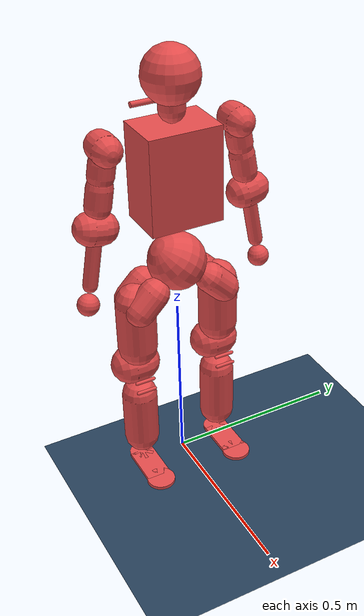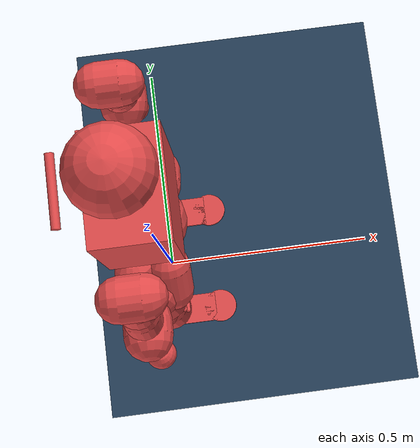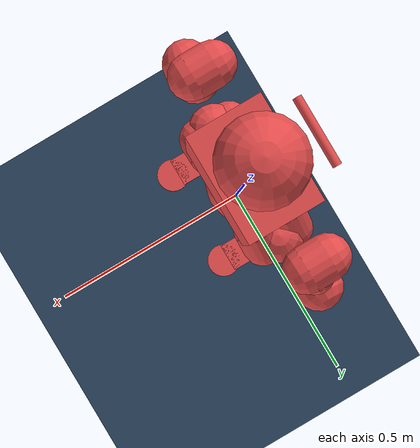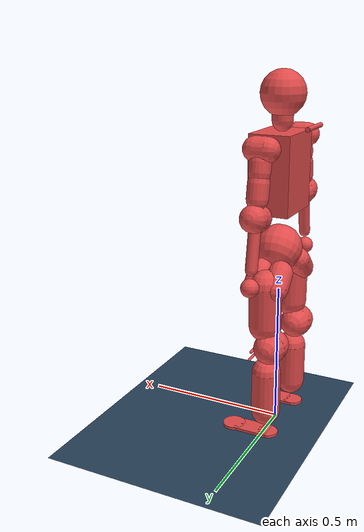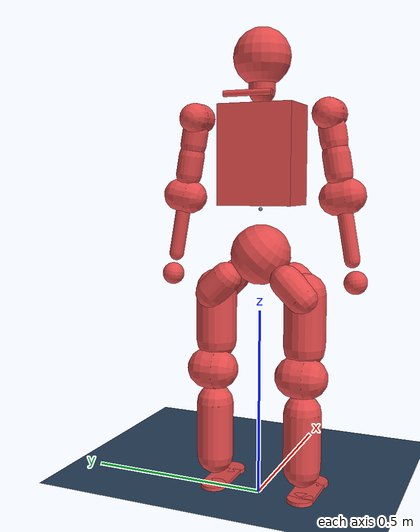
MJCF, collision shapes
<mujoco model="kuavo scene">
  <include file="biped_s17_verified_handball_fixedhead_no_massless.xml"/>

  <statistic center="0 0 1" extent="1.8"/>

  <visual>
    <headlight diffuse="0.6 0.6 0.6" ambient="0.3 0.3 0.3" specular="0 0 0"/>
    <rgba haze="0.15 0.25 0.35 1"/>
    <global azimuth="160" elevation="-20"/>
  </visual>

  <asset>
    <texture type="skybox" builtin="gradient" rgb1="0.3 0.5 0.7" rgb2="0 0 0" width="512" height="3072"/>
    <texture type="2d" name="groundplane" builtin="checker" mark="edge" rgb1="0.2 0.3 0.4" rgb2="0.1 0.2 0.3"
      markrgb="0.8 0.8 0.8" width="300" height="300"/>
    <material name="groundplane" texture="groundplane" texuniform="true" texrepeat="5 5" reflectance="0.2"/>
  </asset>

  <worldbody>
    <light pos="0 0 3.5" dir="0 0 -1" directional="true"/>
    <geom name="floor" size="0 0 0.05" type="plane" material="groundplane" friction="0.4 0.005 0.0001"/>
  </worldbody>

  <keyframe>

    <key name="lie0"
      qpos="
      -0.166485 0.400412 0.079399
      0.507003 -0.53823 0.463297 0.48848
      0.028208 0.068658 0.136149 0.104593 -0.638424 0.128255
      -0.073492 0.026349 -0.090781 0.0 -0.848447 -0.064582
      0.065256
      0.027506 0.056497 -0.407626 -0.2389
      -0.12534 0.015466 0.86924 -0.03061
    "/>

    <key name="home"
      qpos="
    0 0 0.98
    1 0 0 0
    0
    0 0 0 0 0 0
    0 0 0 0 0 0
    0 0 0 0
    0 0 0 0
    "/>
  </keyframe>

</mujoco>

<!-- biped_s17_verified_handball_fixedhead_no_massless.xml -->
<mujoco model="biped_s17">
  <compiler angle="radian" meshdir="../meshes/"/>
  <default>
    <default class="collision">
      <geom material="collision" contype="1" conaffinity="1" user="2" rgba="0.9 0.3 0.3 0.2"/>
    </default>
  </default>
  <asset>
    <material name="collision"/>
    <mesh name="torso" file="torso.STL"/>
    <mesh name="waist" file="waist.STL"/>
    <mesh name="l_leg_pitch" file="l_leg_pitch.STL"/>
    <mesh name="l_leg_roll" file="l_leg_roll.STL"/>
    <mesh name="l_leg_yaw" file="l_leg_yaw.STL"/>
    <mesh name="l_knee" file="l_knee.STL"/>
    <mesh name="l_foot_pitch" file="l_foot_pitch.STL"/>
    <mesh name="l_foot_roll" file="l_foot_roll.STL"/>
    <mesh name="r_leg_pitch" file="r_leg_pitch.STL"/>
    <mesh name="r_leg_roll" file="r_leg_roll.STL"/>
    <mesh name="r_leg_yaw" file="r_leg_yaw.STL"/>
    <mesh name="r_knee" file="r_knee.STL"/>
    <mesh name="r_foot_pitch" file="r_foot_pitch.STL"/>
    <mesh name="r_foot_roll" file="r_foot_roll.STL"/>
    <mesh name="l_arm_pitch" file="l_arm_pitch.STL"/>
    <mesh name="l_arm_roll" file="l_arm_roll.STL"/>
    <mesh name="l_arm_yaw" file="l_arm_yaw.STL"/>
    <mesh name="l_forearm" file="l_forearm.STL"/>
    <mesh name="l_handball" file="l_handball.STL"/>
    <mesh name="r_arm_pitch" file="r_arm_pitch.STL"/>
    <mesh name="r_arm_roll" file="r_arm_roll.STL"/>
    <mesh name="r_arm_yaw" file="r_arm_yaw.STL"/>
    <mesh name="r_forearm" file="r_forearm.STL"/>
    <mesh name="r_handball" file="r_handball.STL"/>
    <mesh name="head_yaw" file="head_yaw.STL"/>
    <mesh name="head_pitch" file="head_pitch.STL"/>
    <mesh name="head_camera_base" file="head_camera_base.STL"/>
    <mesh name="head_radar" file="head_radar.STL"/>
  </asset>
  <worldbody>
    <!-- The IMU-bearing chest is the floating root, matching Roban semantics. -->
    <body name="base_link" pos="0 0 0.77">
      <site name="imu" pos="0 0 0"/>
      <inertial pos="-0.01005136 -0.00110498 0.14058574" mass="8.37744703" fullinertia="0.10436018 0.08324244 0.04927332 0.00037418 0.00220231 -0.00108080"/>
      <joint name="dummy_to_base_link" type="free" limited="false" actuatorfrclimited="false"/>
      <geom type="mesh" contype="0" conaffinity="0" group="1" density="0" rgba="1 1 1 1" mesh="torso"/>
      <geom size="0.07 0.1 0.13" pos="0.01 0 0.14" type="box" class="collision"/>
      <geom size="0.008 0.0625" pos="-0.102 0 0.288" quat="0.707105 0.707108 0 0" type="cylinder" class="collision"/>
      <!-- The pelvis and both legs move below the chest through the waist. -->
      <body name="waist_yaw_link">
        <inertial pos="0.00202324 -0.00003822 -0.12282710" mass="5.27737344" fullinertia="0.02656560 0.01821248 0.02080739 0.00001678 -0.00000028 -0.00000269"/>
        <joint name="waist_yaw_joint" pos="0 0 0" axis="0 0 1" range="-2.61799 2.61799" armature="0.003" damping="0.2" frictionloss="0.0"/>
        <geom type="mesh" contype="0" conaffinity="0" group="1" density="0" rgba="1 1 1 1" mesh="waist"/>
        <geom size="0.08" pos="0.005 0 -0.12" quat="0.923764 0.382961 0 0" class="collision"/>
        <body name="leg_l1_link" pos="0 0.12441 -0.22265">
          <inertial pos="-0.00003227 -0.03334417 0.03367064" mass="0.6865" fullinertia="0.00126377 0.00218060 0.00217034 0.00001414 -0.00001412 0.00004419"/>
          <joint name="leg_l1_joint" pos="0 0 0" axis="0 0.707107 -0.707107" range="-3.228 2.44346" armature="0.003" damping="0.2" frictionloss="0.0"/>
          <geom type="mesh" contype="0" conaffinity="0" group="1" density="0" rgba="1 1 1 1" mesh="l_leg_pitch"/>
          <geom size="0.042 0.03" pos="-0.035 -0.02 0.02" quat="0.923764 0.382961 0 0" type="capsule" class="collision"/>
          <geom size="0.042 0.03" pos="0.035 -0.02 0.02" quat="0.923764 0.382961 0 0" type="capsule" class="collision"/>
          <body name="leg_l2_link">
            <inertial pos="0.00997750 0.00006468 -0.00976037" mass="2.054" fullinertia="0.00431431 0.00400702 0.00326276 0.00000608 -0.00014901 -0.00000584"/>
            <joint name="leg_l2_joint" pos="0 0 0" axis="1 0 0" range="-0.837758 2.40855" armature="0.003" damping="0.2" frictionloss="0.0"/>
            <geom type="mesh" contype="0" conaffinity="0" group="1" density="0" rgba="1 1 1 1" mesh="l_leg_roll"/>
            <geom size="0.055 0.07" pos="0 0 -0.065" type="capsule" class="collision"/>
            <body name="leg_l3_link">
              <inertial pos="-0.01402491 -0.00139317 -0.15993926" mass="3.2746" fullinertia="0.01347200 0.01460281 0.00559251 -0.00009787 -0.00236299 -0.00025458"/>
              <joint name="leg_l3_joint" pos="0 0 0" axis="0 0 1" range="-1.7453 1.7453" armature="0.003" damping="0.2" frictionloss="0.0"/>
              <geom type="mesh" contype="0" conaffinity="0" group="1" density="0" rgba="1 1 1 1" mesh="l_leg_yaw"/>
              <geom size="0.055 0.015" pos="-0.025 0 -0.21" quat="0.707388 0.706825 0 0" type="capsule" class="collision"/>
              <body name="leg_l4_link" pos="-0.03 0 -0.213">
                <inertial pos="0.02266979 0.00479531 -0.11412872" mass="2.4454" fullinertia="0.01333243 0.01330983 0.00318742 0.00025106 0.00029427 -0.00133540"/>
                <joint name="leg_l4_joint" pos="0 0 0" axis="0 1 0" range="-0.0872665 2.53073" armature="0.003" damping="0.2" frictionloss="0.0"/>
                <geom type="mesh" contype="0" conaffinity="0" group="1" density="0" rgba="1 1 1 1" mesh="l_knee"/>
                <geom size="0.05 0.075" pos="0.021 0 -0.17" type="capsule" class="collision"/>
                <geom size="0.005 0.025" pos="0.068 0 -0.02" quat="0.707388 0.706825 0 0" type="capsule" class="collision"/>
                <geom size="0.005 0.025" pos="0.074 0 -0.05" quat="0.707388 0.706825 0 0" type="capsule" class="collision"/>
                <body name="leg_l5_link" pos="0.03 0 -0.276">
                  <inertial pos="-0.00344503 -0.00000752 -0.00936005" mass="0.1314" fullinertia="0.00002019 0.00002431 0.00001384 0.00000000 -0.00000328 0.00000000"/>
                  <joint name="leg_l5_joint" pos="0 0 0" axis="0 1 0" range="-0.872665 0.523599" armature="0.003" damping="0.2" frictionloss="0.0"/>
                  <geom type="mesh" contype="0" conaffinity="0" group="1" density="0" rgba="1 1 1 1" mesh="l_foot_pitch"/>
                  <body name="leg_l6_link" pos="0 0 -0.018">
                    <inertial pos="0.02860311 0.00007463 -0.01983204" mass="0.5783271" fullinertia="0.00028622 0.00147216 0.00158313 -0.00000001 0.00013017 -0.00000093"/>
                    <joint name="leg_l6_joint" pos="0 0 0" axis="1 0 0" range="-0.261799 0.261799" armature="0.003" damping="0.2" frictionloss="0.0"/>
                    <geom type="mesh" contype="0" conaffinity="0" group="1" density="0" rgba="1 1 1 1" mesh="l_foot_roll"/>
                    <geom size="0.035 0.005" pos="-0.02 0 -0.035" type="cylinder" class="collision"/>
                    <geom size="0.04 0.005" pos="0.11 0 -0.035" type="cylinder" class="collision"/>
                    <geom size="0.06 0.035 0.005" pos="0.038 0 -0.035" type="box" class="collision"/>
                  </body>
                </body>
              </body>
            </body>
          </body>
        </body>
        <body name="leg_r1_link" pos="0 -0.12441 -0.22265">
          <inertial pos="-0.00003227 0.03334417 0.03367064" mass="0.6865" fullinertia="0.00126377 0.00218060 0.00217034 -0.00001414 -0.00001412 -0.00004419"/>
          <joint name="leg_r1_joint" pos="0 0 0" axis="0 -0.707107 -0.707107" range="-2.44346 3.228" armature="0.003" damping="0.2" frictionloss="0.0"/>
          <geom type="mesh" contype="0" conaffinity="0" group="1" density="0" rgba="1 1 1 1" mesh="r_leg_pitch"/>
          <geom size="0.042 0.03" pos="-0.035 0.02 0.02" quat="0.923764 -0.382961 0 0" type="capsule" class="collision"/>
          <geom size="0.042 0.03" pos="0.035 0.02 0.02" quat="0.923764 -0.382961 0 0" type="capsule" class="collision"/>
          <body name="leg_r2_link">
            <inertial pos="0.00997750 -0.00006468 -0.00976037" mass="2.054" fullinertia="0.00431431 0.00400702 0.00326276 -0.00000608 -0.00014901 0.00000584"/>
            <joint name="leg_r2_joint" pos="0 0 0" axis="1 0 0" range="-2.40855 0.837758" armature="0.003" damping="0.2" frictionloss="0.0"/>
            <geom type="mesh" contype="0" conaffinity="0" group="1" density="0" rgba="1 1 1 1" mesh="r_leg_roll"/>
            <geom size="0.055 0.07" pos="0 0 -0.065" type="capsule" class="collision"/>
            <body name="leg_r3_link">
              <inertial pos="-0.01402491 0.00139317 -0.15993926" mass="3.2746" fullinertia="0.01347200 0.01460281 0.00559251 0.00009787 -0.00236299 0.00025458"/>
              <joint name="leg_r3_joint" pos="0 0 0" axis="0 0 1" range="-1.7453 1.7453" armature="0.003" damping="0.2" frictionloss="0.0"/>
              <geom type="mesh" contype="0" conaffinity="0" group="1" density="0" rgba="1 1 1 1" mesh="r_leg_yaw"/>
              <geom size="0.055 0.015" pos="-0.025 0 -0.21" quat="0.707388 0.706825 0 0" type="capsule" class="collision"/>
              <body name="leg_r4_link" pos="-0.03 0 -0.213">
                <inertial pos="0.02266979 -0.00479531 -0.11412872" mass="2.4454" fullinertia="0.01333243 0.01330983 0.00318742 -0.00025106 0.00029427 0.00133540"/>
                <joint name="leg_r4_joint" pos="0 0 0" axis="0 1 0" range="-0.0872665 2.53073" armature="0.003" damping="0.2" frictionloss="0.0"/>
                <geom type="mesh" contype="0" conaffinity="0" group="1" density="0" rgba="1 1 1 1" mesh="r_knee"/>
                <geom size="0.05 0.075" pos="0.021 0 -0.17" type="capsule" class="collision"/>
                <geom size="0.005 0.025" pos="0.068 0 -0.02" quat="0.707388 0.706825 0 0" type="capsule" class="collision"/>
                <geom size="0.005 0.025" pos="0.074 0 -0.05" quat="0.707388 0.706825 0 0" type="capsule" class="collision"/>
                <body name="leg_r5_link" pos="0.03 0 -0.276">
                  <inertial pos="-0.00344503 0.00000752 -0.00936005" mass="0.1314" fullinertia="0.00002019 0.00002431 0.00001384 0.00000000 -0.00000328 0.00000000"/>
                  <joint name="leg_r5_joint" pos="0 0 0" axis="0 1 0" range="-0.872665 0.523599" armature="0.003" damping="0.2" frictionloss="0.0"/>
                  <geom type="mesh" contype="0" conaffinity="0" group="1" density="0" rgba="1 1 1 1" mesh="r_foot_pitch"/>
                  <body name="leg_r6_link" pos="0 0 -0.018">
                    <inertial pos="0.02860311 -0.00007463 -0.01983204" mass="0.5783271" fullinertia="0.00028622 0.00147216 0.00158313 0.00000001 0.00013017 0.00000093"/>
                    <joint name="leg_r6_joint" pos="0 0 0" axis="1 0 0" range="-0.261799 0.261799" armature="0.003" damping="0.2" frictionloss="0.0"/>
                    <geom type="mesh" contype="0" conaffinity="0" group="1" density="0" rgba="1 1 1 1" mesh="r_foot_roll"/>
                    <geom size="0.035 0.005" pos="-0.02 0 -0.035" type="cylinder" class="collision"/>
                    <geom size="0.04 0.005" pos="0.11 0 -0.035" type="cylinder" class="collision"/>
                    <geom size="0.06 0.035 0.005" pos="0.038 0 -0.035" type="box" class="collision"/>
                  </body>
                </body>
              </body>
            </body>
          </body>
        </body>
      </body>
      <body name="zarm_l1_link" pos="0 0.181 0.23843">
        <inertial pos="0.01773604 -0.00289047 -0.00006872" mass="0.84760000" fullinertia="0.00073101 0.00088866 0.00101122 -0.00004199 -0.00000127 -0.00000149"/>
        <joint name="zarm_l1_joint" pos="0 0 0" axis="0 1 0" range="-3.14159 2.0944" armature="0.003" damping="0.2" frictionloss="0.0"/>
        <geom type="mesh" contype="0" conaffinity="0" group="1" density="0" rgba="1 1 1 1" mesh="l_arm_pitch"/>
        <geom size="0.04 0.02" quat="0.707105 0 0.707108 0" type="capsule" class="collision"/>
        <body name="zarm_l2_link" quat="0.996195 0.0871543 0 0">
          <inertial pos="0.00199256 0.00000000 -0.03214647" mass="0.36680000" fullinertia="0.00053752 0.00078576 0.00057618 0.00000001 -0.00002375 0.00000000"/>
          <joint name="zarm_l2_joint" pos="0 0 0" axis="1 0 0" range="-0.52 3.316" armature="0.003" damping="0.2" frictionloss="0.0"/>
          <geom type="mesh" contype="0" conaffinity="0" group="1" density="0" rgba="1 1 1 1" mesh="l_arm_roll"/>
          <geom size="0.035 0.0175" pos="0 0 -0.0525" type="capsule" class="collision"/>
          <body name="zarm_l3_link">
            <inertial pos="-0.00007730 -0.00993640 -0.15083251" mass="1.51660000" fullinertia="0.00716993 0.00677305 0.00141913 0.00000142 0.00000316 -0.00085824"/>
            <joint name="zarm_l3_joint" pos="0 0 0" axis="0 0 1" range="-1.5708 1.5708" armature="0.003" damping="0.2" frictionloss="0.0"/>
            <geom type="mesh" contype="0" conaffinity="0" group="1" density="0" rgba="1 1 1 1" mesh="l_arm_yaw"/>
            <geom size="0.035 0.025" pos="0 0 -0.125" type="capsule" class="collision"/>
            <body name="zarm_l4_link" pos="0 0 -0.2085">
              <inertial pos="-0.000693279 -0.00191472 -0.0925486" quat="0.999843 0.0163619 -0.00329901 0.00594719" mass="0.522124" diaginertia="0.00347786 0.00326967 0.000556314"/>
              <joint name="zarm_l4_joint" pos="0 0 0" axis="0 1 0" range="-2.26893 0.08726" armature="0.003" damping="0.2" frictionloss="0.0"/>
              <geom type="mesh" contype="0" conaffinity="0" group="1" density="0" rgba="1 1 1 1" mesh="l_forearm"/>
              <geom size="0.045 0.015" quat="0.707388 0.706825 0 0" type="capsule" class="collision"/>
              <geom size="0.02 0.06" pos="0 0 -0.1" type="capsule" class="collision"/>
              <geom size="0.03" pos="0 0 -0.2175" class="collision" />
              <geom pos="0 0 -0.085236" quat="1 0 0 0" type="mesh" contype="0" conaffinity="0" group="1" density="0" rgba="1 1 1 1" mesh="l_handball"/>
            </body>
          </body>
        </body>
      </body>
      <body name="zarm_r1_link" pos="0 -0.181 0.23843">
        <inertial pos="0.01773604 0.00289047 -0.00006872" mass="0.84760000" fullinertia="0.00073101 0.00088866 0.00101122 0.00004199 -0.00000127 0.00000149"/>
        <joint name="zarm_r1_joint" pos="0 0 0" axis="0 1 0" range="-3.14159 2.0944" armature="0.003" damping="0.2" frictionloss="0.0"/>
        <geom type="mesh" contype="0" conaffinity="0" group="1" density="0" rgba="1 1 1 1" mesh="r_arm_pitch"/>
        <geom size="0.04 0.02" quat="0.707105 0 0.707108 0" type="capsule" class="collision"/>
        <body name="zarm_r2_link" quat="0.996195 -0.0871543 0 0">
          <inertial pos="0.00199256 0.00000000 -0.03214647" mass="0.36680000" fullinertia="0.00053752 0.00078576 0.00057618 -0.00000001 -0.00002375 0.00000000"/>
          <joint name="zarm_r2_joint" pos="0 0 0" axis="1 0 0" range="-3.3161 0.52" armature="0.003" damping="0.2" frictionloss="0.0"/>
          <geom type="mesh" contype="0" conaffinity="0" group="1" density="0" rgba="1 1 1 1" mesh="r_arm_roll"/>
          <geom size="0.035 0.0175" pos="0 0 -0.0525" type="capsule" class="collision"/>
          <body name="zarm_r3_link">
            <inertial pos="-0.00007730 0.00993640 -0.15083251" mass="1.51660000" fullinertia="0.00716993 0.00677305 0.00141913 -0.00000142 0.00000316 0.00085824"/>
            <joint name="zarm_r3_joint" pos="0 0 0" axis="0 0 1" range="-1.5708 1.5708" armature="0.003" damping="0.2" frictionloss="0.0"/>
            <geom type="mesh" contype="0" conaffinity="0" group="1" density="0" rgba="1 1 1 1" mesh="r_arm_yaw"/>
            <geom size="0.035 0.025" pos="0 0 -0.125" type="capsule" class="collision"/>
            <body name="zarm_r4_link" pos="0 0 -0.2085">
              <inertial pos="-0.000693279 0.00191472 -0.0925486" quat="0.999843 -0.0163619 -0.00329901 -0.00594719" mass="0.522124" diaginertia="0.00347786 0.00326967 0.000556314"/>
              <joint name="zarm_r4_joint" pos="0 0 0" axis="0 1 0" range="-2.26893 0.08726" armature="0.003" damping="0.2" frictionloss="0.0"/>
              <geom type="mesh" contype="0" conaffinity="0" group="1" density="0" rgba="1 1 1 1" mesh="r_forearm"/>
              <geom size="0.045 0.015" quat="0.707388 0.706825 0 0" type="capsule" class="collision"/>
              <geom size="0.02 0.06" pos="0 0 -0.1" type="capsule" class="collision"/>
              <geom size="0.03" pos="0 0 -0.2175" class="collision"  />
              <geom pos="0 0 -0.085236" quat="1 0 0 0" type="mesh" contype="0" conaffinity="0" group="1" density="0" rgba="1 1 1 1" mesh="r_handball"/>
            </body>
          </body>
        </body>
      </body>
      <body name="zhead_1_link" pos="0.0042 0 0.35369">
        <inertial pos="-0.00060270 0.00784136 0.01208017" mass="1.07555742" fullinertia="0.00274009 0.00233168 0.00108474 -0.00000122 -0.00001156 -0.00030085"/>
        <geom type="mesh" contype="0" conaffinity="0" group="1" density="0" rgba="1 1 1 1" mesh="head_yaw"/>
        <geom size="0.035 0.05" type="capsule" class="collision"/>
        <geom pos="0 0 -0.026453" quat="1 0 0 0" type="mesh" contype="0" conaffinity="0" group="1" density="0" rgba="1 1 1 1" mesh="head_radar"/>
        <body name="zhead_2_link" quat="1 0 0 0">
          <inertial pos="0.01120988 -0.00001602 0.05812591" mass="0.61000000" fullinertia="0.00232529 0.00281005 0.00280059 -0.00000051 0.00028200 -0.00000078"/>
          <geom type="mesh" contype="0" conaffinity="0" group="1" density="0" rgba="1 1 1 1" mesh="head_pitch"/>
          <geom size="0.075" pos="0 0 0.035" class="collision"/>
          <geom pos="0.047118 0 0.051192" euler="0 0.27152 0" type="mesh" contype="0" conaffinity="0" group="1" density="0" rgba="1 1 1 1" mesh="head_camera_base"/>
          <camera name="camera_depth_frame" pos="0.0814929976698 -0.00125 0.0696697037317" quat="0.563071056741 0.427727699664 -0.427727699664 -0.563071056741" fovy="65"/>
        </body>
      </body>
    </body>
  </worldbody>
  <actuator>
    <motor gear="1" joint="leg_l1_joint" name="leg_l1_joint_motor" ctrllimited="true" ctrlrange="-150 150"/>
    <motor gear="1" joint="leg_l2_joint" name="leg_l2_joint_motor" ctrllimited="true" ctrlrange="-150 150"/>
    <motor gear="1" joint="leg_l3_joint" name="leg_l3_joint_motor" ctrllimited="true" ctrlrange="-70 70"/>
    <motor gear="1" joint="leg_l4_joint" name="leg_l4_joint_motor" ctrllimited="true" ctrlrange="-150 150"/>
    <motor gear="1" joint="leg_l5_joint" name="leg_l5_joint_motor" ctrllimited="true" ctrlrange="-74 74"/>
    <motor gear="1" joint="leg_l6_joint" name="leg_l6_joint_motor" ctrllimited="true" ctrlrange="-74 74"/>
    <motor gear="1" joint="leg_r1_joint" name="leg_r1_joint_motor" ctrllimited="true" ctrlrange="-150 150"/>
    <motor gear="1" joint="leg_r2_joint" name="leg_r2_joint_motor" ctrllimited="true" ctrlrange="-150 150"/>
    <motor gear="1" joint="leg_r3_joint" name="leg_r3_joint_motor" ctrllimited="true" ctrlrange="-70 70"/>
    <motor gear="1" joint="leg_r4_joint" name="leg_r4_joint_motor" ctrllimited="true" ctrlrange="-150 150"/>
    <motor gear="1" joint="leg_r5_joint" name="leg_r5_joint_motor" ctrllimited="true" ctrlrange="-74 74"/>
    <motor gear="1" joint="leg_r6_joint" name="leg_r6_joint_motor" ctrllimited="true" ctrlrange="-74 74"/>
    <motor gear="1" joint="waist_yaw_joint" name="waist_yaw_joint_motor" ctrllimited="true" ctrlrange="-80 80"/>
    <motor gear="1" joint="zarm_l1_joint" name="zarm_l1_joint_motor" ctrllimited="true" ctrlrange="-14.1 14.1"/>
    <motor gear="1" joint="zarm_l2_joint" name="zarm_l2_joint_motor" ctrllimited="true" ctrlrange="-37 37"/>
    <motor gear="1" joint="zarm_l3_joint" name="zarm_l3_joint_motor" ctrllimited="true" ctrlrange="-37 37"/>
    <motor gear="1" joint="zarm_l4_joint" name="zarm_l4_joint_motor" ctrllimited="true" ctrlrange="-37 37"/>
    <motor gear="1" joint="zarm_r1_joint" name="zarm_r1_joint_motor" ctrllimited="true" ctrlrange="-14.1 14.1"/>
    <motor gear="1" joint="zarm_r2_joint" name="zarm_r2_joint_motor" ctrllimited="true" ctrlrange="-37 37"/>
    <motor gear="1" joint="zarm_r3_joint" name="zarm_r3_joint_motor" ctrllimited="true" ctrlrange="-37 37"/>
    <motor gear="1" joint="zarm_r4_joint" name="zarm_r4_joint_motor" ctrllimited="true" ctrlrange="-37 37"/>
  </actuator>
  <sensor>
    <accelerometer name="BodyAcc" site="imu"/>
    <velocimeter name="BodyVel" site="imu"/>
    <gyro name="BodyGyro" site="imu"/>
    <framepos name="BodyPos" objtype="site" objname="imu"/>
    <framequat name="BodyQuat" objtype="site" objname="imu"/>
    <jointpos name="leg_l1_joint_pos" joint="leg_l1_joint"/>
    <jointpos name="leg_l2_joint_pos" joint="leg_l2_joint"/>
    <jointpos name="leg_l3_joint_pos" joint="leg_l3_joint"/>
    <jointpos name="leg_l4_joint_pos" joint="leg_l4_joint"/>
    <jointpos name="leg_l5_joint_pos" joint="leg_l5_joint"/>
    <jointpos name="leg_l6_joint_pos" joint="leg_l6_joint"/>
    <jointpos name="leg_r1_joint_pos" joint="leg_r1_joint"/>
    <jointpos name="leg_r2_joint_pos" joint="leg_r2_joint"/>
    <jointpos name="leg_r3_joint_pos" joint="leg_r3_joint"/>
    <jointpos name="leg_r4_joint_pos" joint="leg_r4_joint"/>
    <jointpos name="leg_r5_joint_pos" joint="leg_r5_joint"/>
    <jointpos name="leg_r6_joint_pos" joint="leg_r6_joint"/>
    <jointpos name="waist_yaw_joint_pos" joint="waist_yaw_joint"/>
    <jointpos name="zarm_l1_joint_pos" joint="zarm_l1_joint"/>
    <jointpos name="zarm_l2_joint_pos" joint="zarm_l2_joint"/>
    <jointpos name="zarm_l3_joint_pos" joint="zarm_l3_joint"/>
    <jointpos name="zarm_l4_joint_pos" joint="zarm_l4_joint"/>
    <jointpos name="zarm_r1_joint_pos" joint="zarm_r1_joint"/>
    <jointpos name="zarm_r2_joint_pos" joint="zarm_r2_joint"/>
    <jointpos name="zarm_r3_joint_pos" joint="zarm_r3_joint"/>
    <jointpos name="zarm_r4_joint_pos" joint="zarm_r4_joint"/>
    <jointvel name="leg_l1_joint_vel" joint="leg_l1_joint"/>
    <jointvel name="leg_l2_joint_vel" joint="leg_l2_joint"/>
    <jointvel name="leg_l3_joint_vel" joint="leg_l3_joint"/>
    <jointvel name="leg_l4_joint_vel" joint="leg_l4_joint"/>
    <jointvel name="leg_l5_joint_vel" joint="leg_l5_joint"/>
    <jointvel name="leg_l6_joint_vel" joint="leg_l6_joint"/>
    <jointvel name="leg_r1_joint_vel" joint="leg_r1_joint"/>
    <jointvel name="leg_r2_joint_vel" joint="leg_r2_joint"/>
    <jointvel name="leg_r3_joint_vel" joint="leg_r3_joint"/>
    <jointvel name="leg_r4_joint_vel" joint="leg_r4_joint"/>
    <jointvel name="leg_r5_joint_vel" joint="leg_r5_joint"/>
    <jointvel name="leg_r6_joint_vel" joint="leg_r6_joint"/>
    <jointvel name="waist_yaw_joint_vel" joint="waist_yaw_joint"/>
    <jointvel name="zarm_l1_joint_vel" joint="zarm_l1_joint"/>
    <jointvel name="zarm_l2_joint_vel" joint="zarm_l2_joint"/>
    <jointvel name="zarm_l3_joint_vel" joint="zarm_l3_joint"/>
    <jointvel name="zarm_l4_joint_vel" joint="zarm_l4_joint"/>
    <jointvel name="zarm_r1_joint_vel" joint="zarm_r1_joint"/>
    <jointvel name="zarm_r2_joint_vel" joint="zarm_r2_joint"/>
    <jointvel name="zarm_r3_joint_vel" joint="zarm_r3_joint"/>
    <jointvel name="zarm_r4_joint_vel" joint="zarm_r4_joint"/>
  </sensor>
</mujoco>
